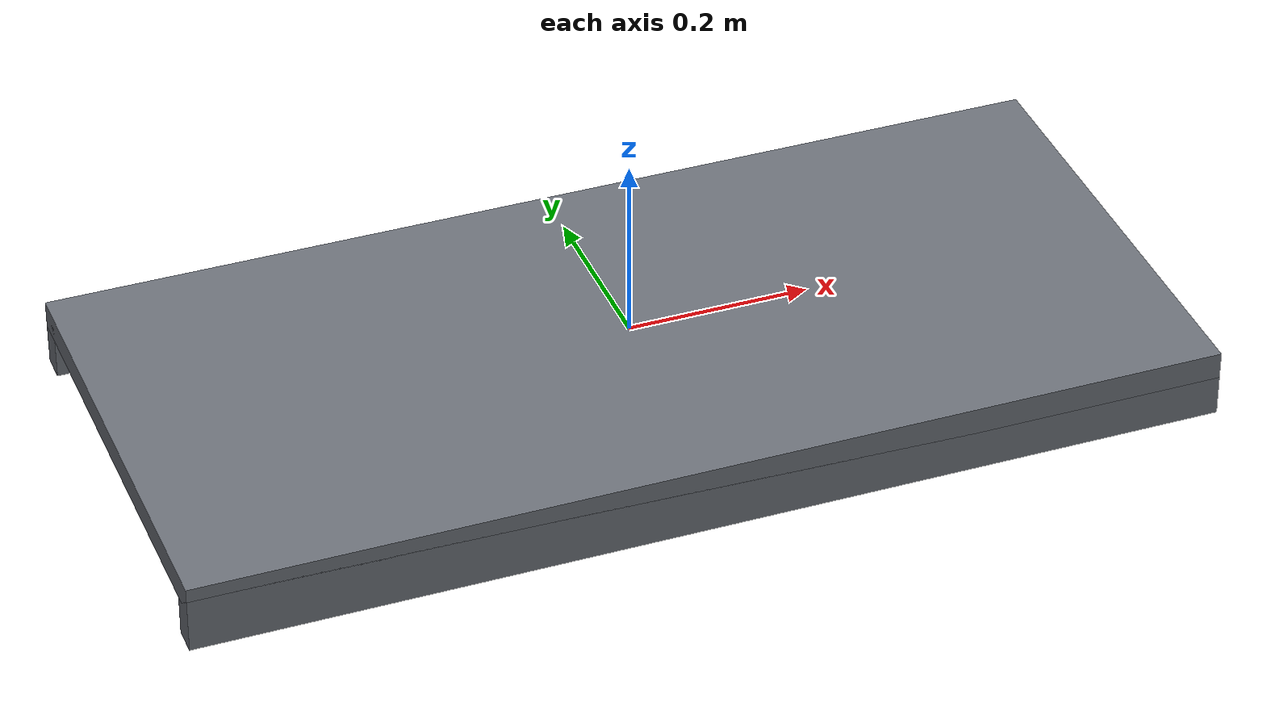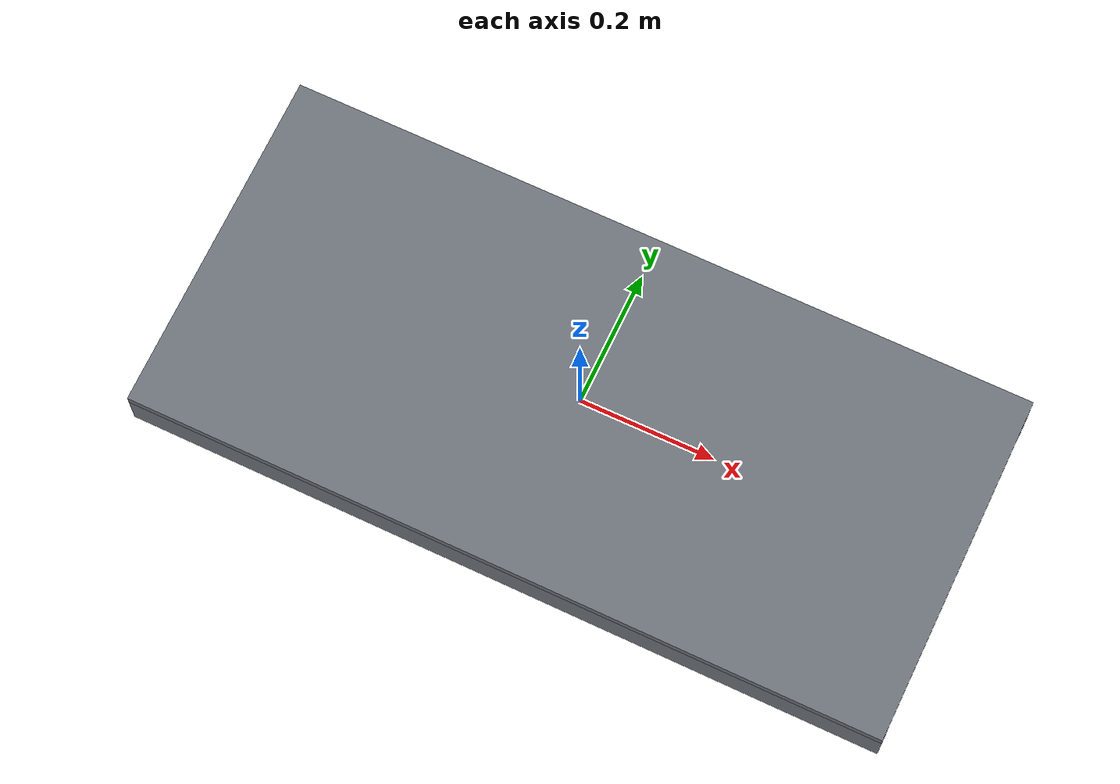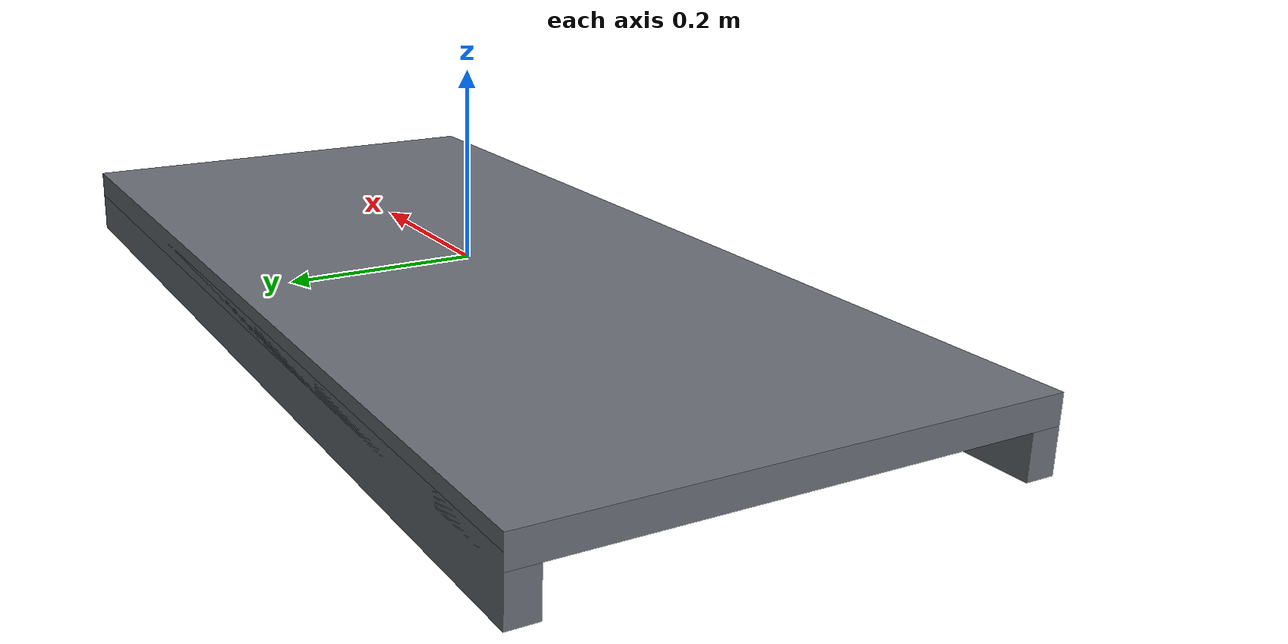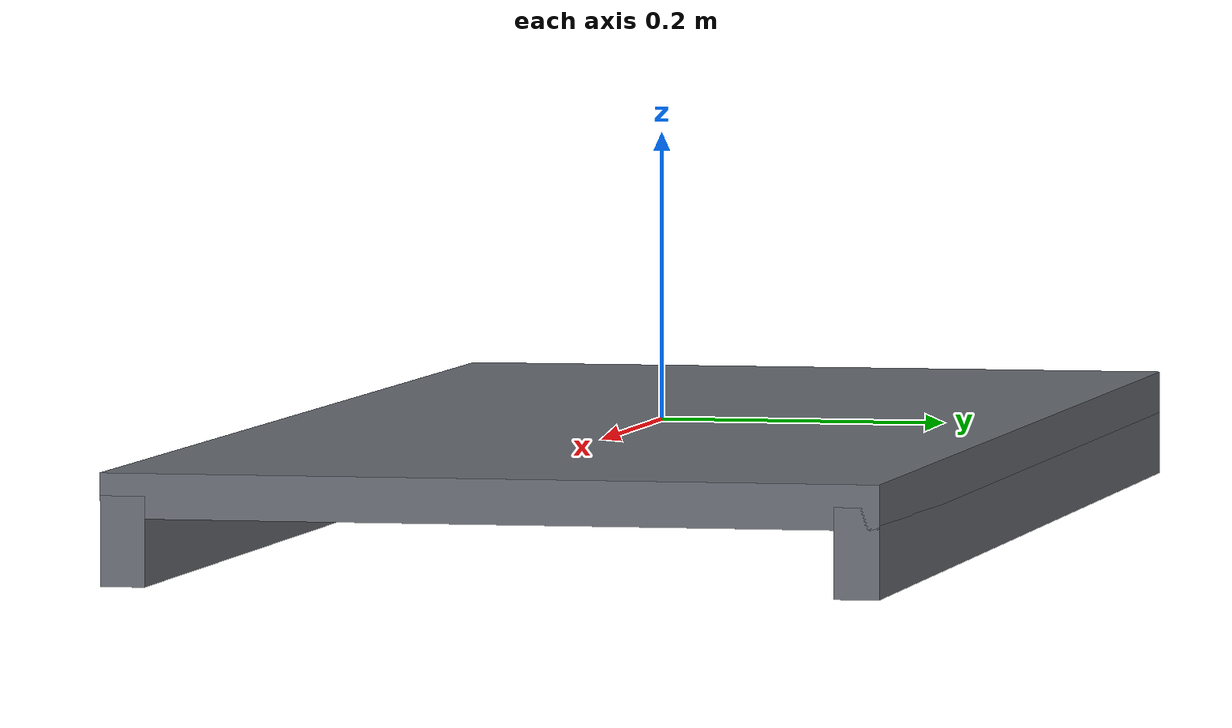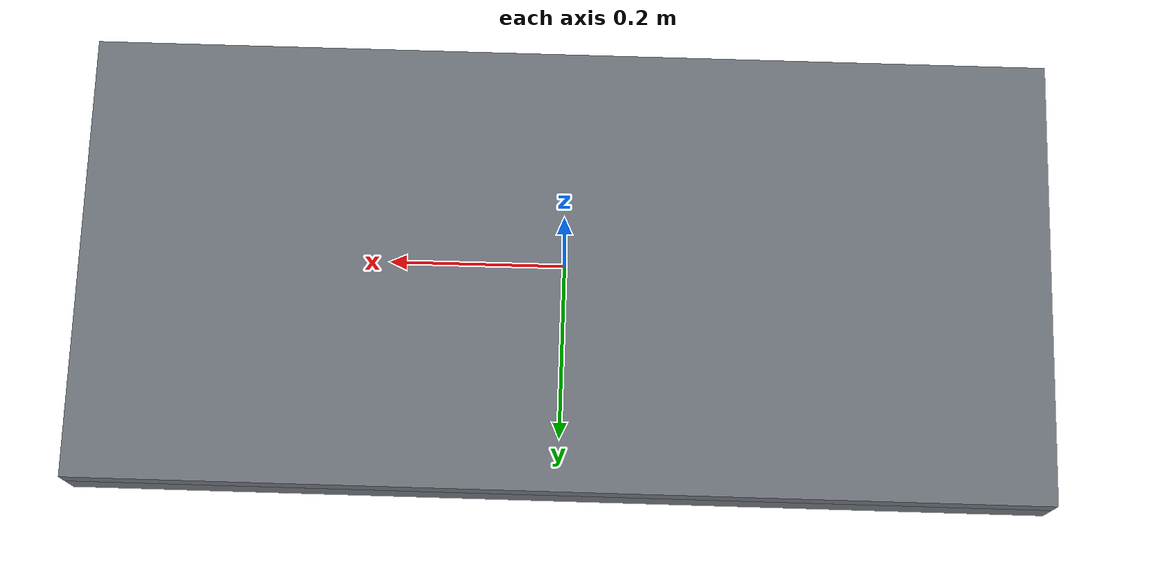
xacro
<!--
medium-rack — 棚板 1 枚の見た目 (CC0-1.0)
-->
<?xml version="1.0"?>
<robot xmlns:xacro="http://www.ros.org/wiki/xacro" name="medium-rack-shelf">
  <xacro:arg name="width" default="1.2"/>
  <xacro:arg name="depth" default="0.6"/>
  <xacro:arg name="thickness" default="0.03"/>
  <xacro:arg name="upright" default="0.04"/>

  <xacro:property name="w" value="$(arg width)"/>
  <xacro:property name="d" value="$(arg depth)"/>
  <xacro:property name="t" value="$(arg thickness)"/>
  <xacro:property name="u" value="$(arg upright)"/>

  <material name="deck"><color rgba="0.42 0.44 0.47 1"/></material>

  <link name="shelf"/>
  <link name="deck">
    <visual>
      <origin xyz="0 0 ${-t/2}"/>
      <geometry><box size="${w - 2*u} ${d - 2*u} ${t}"/></geometry>
      <material name="deck"/>
    </visual>
  </link>
  <joint name="j_deck" type="fixed"><parent link="shelf"/><child link="deck"/></joint>

  <!-- 前後の縁 (板の折り返し) -->
  <xacro:macro name="lip" params="tag sign">
    <link name="lip_${tag}">
      <visual>
        <origin xyz="0 ${sign * (d/2 - u - t/2)} ${-t - t/2}"/>
        <geometry><box size="${w - 2*u} ${t} ${t*2}"/></geometry>
        <material name="deck"/>
      </visual>
    </link>
    <joint name="j_lip_${tag}" type="fixed"><parent link="shelf"/><child link="lip_${tag}"/></joint>
  </xacro:macro>
  <xacro:lip tag="f" sign="-1"/>
  <xacro:lip tag="b" sign="1"/>
</robot>
